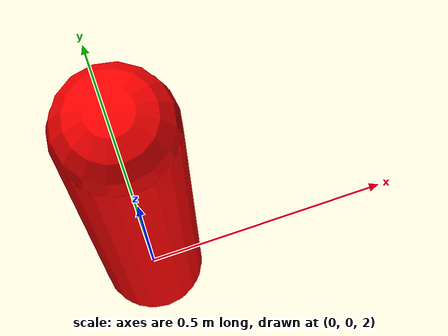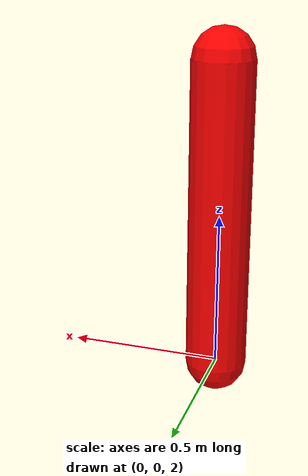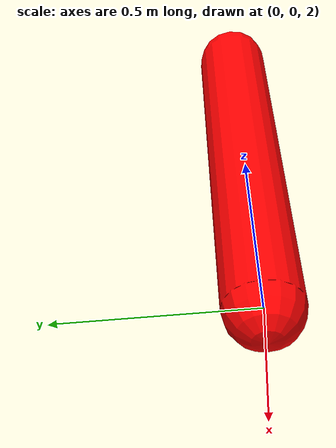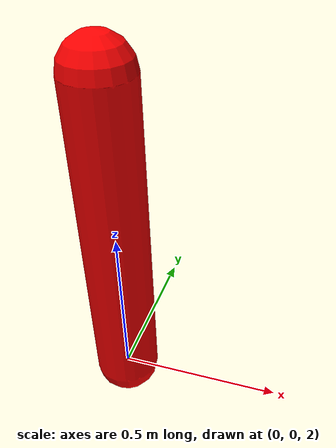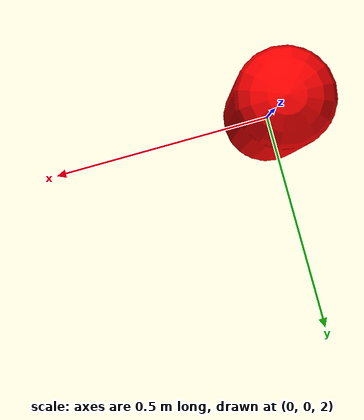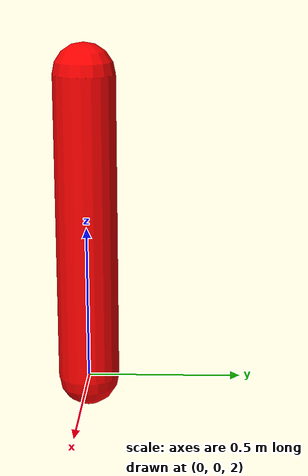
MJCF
<?xml version="1.0" ?>
<mujoco>
    <option gravity="0 0 -9.81"/>
    <worldbody>
        <light diffuse=".5 .5 .5" pos="0 0 3" dir="0 0 -1"/>
        <geom type="plane" size="5 5 0.1" rgba=".9 .9 .9 1"/>
        <body pos="0 0 2">
            <joint type="hinge" axis="0 1 0" name="pendulum_joint"/>
            <geom type="capsule" size="0.1" fromto="0 0 0 0 0 1" rgba="1 0 0 1"/>
        </body>
    </worldbody>
    <actuator>
        <motor joint="pendulum_joint" name="torque" gear="1"/>
    </actuator>
</mujoco>
